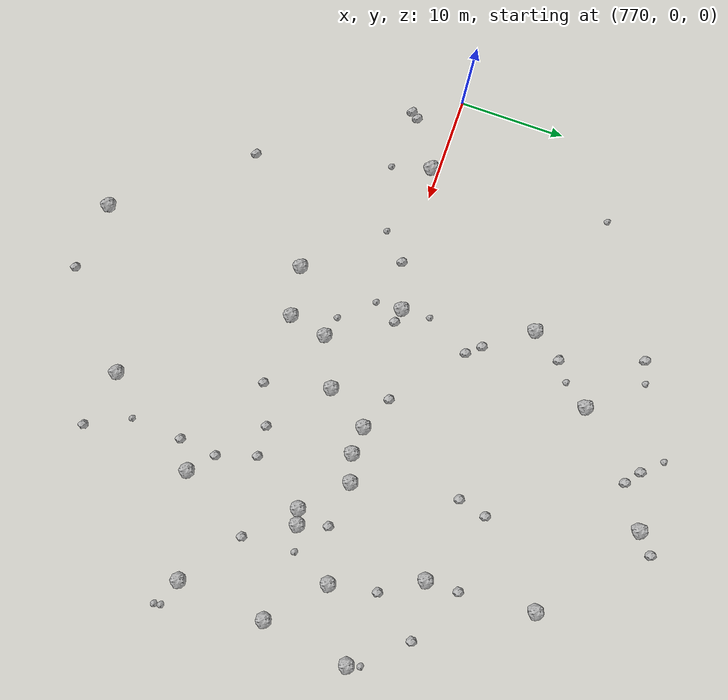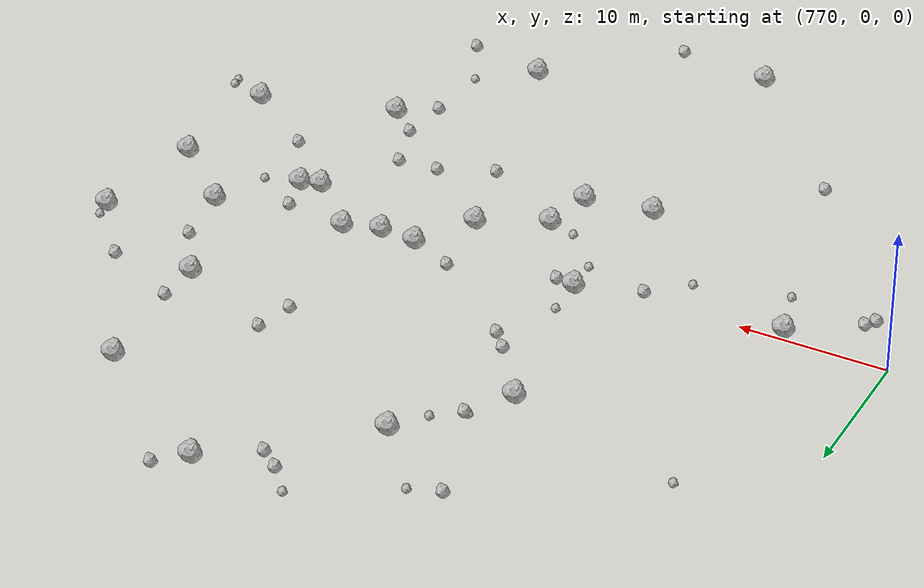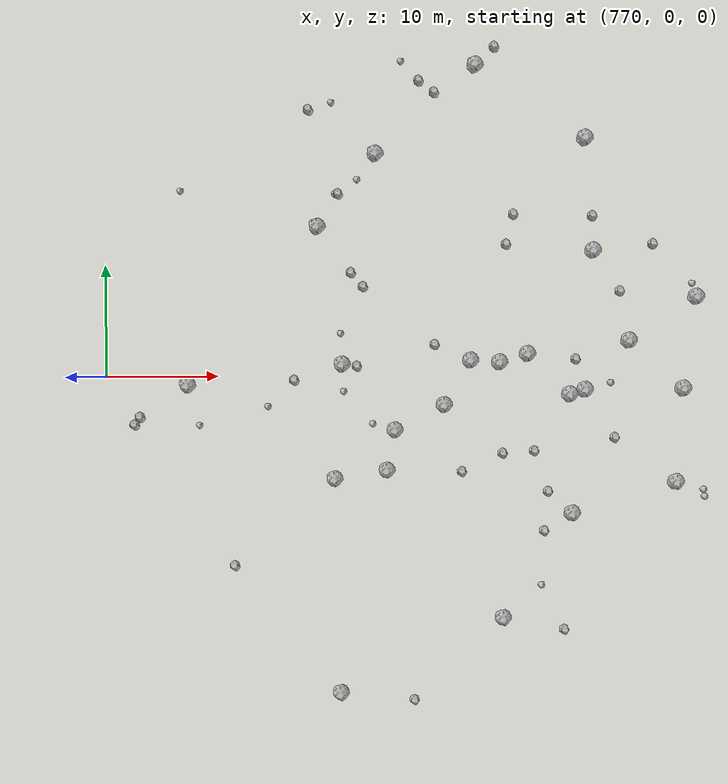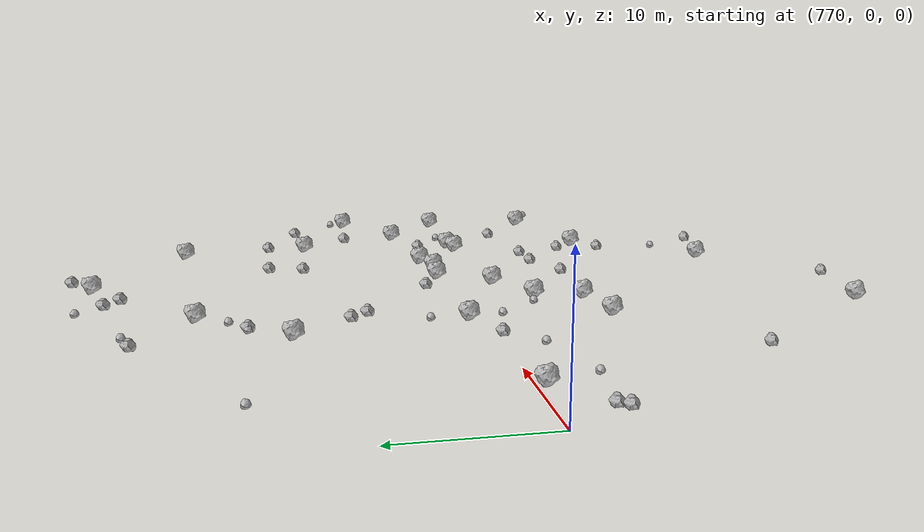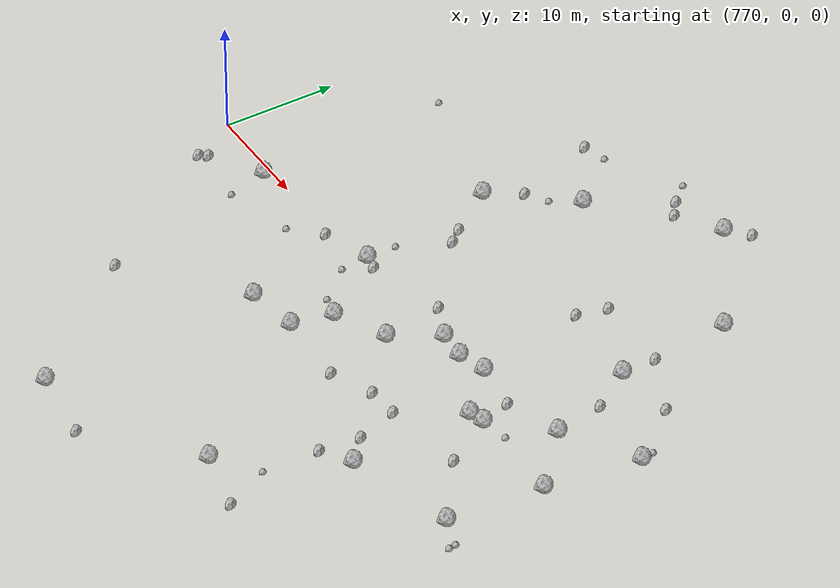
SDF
<sdf version="1.6">
 <world name="default">
  <include><uri>model://sun</uri></include>
  <model name="rock1_20_4">
   <include><uri>model://rock1</uri><pose>805.1095233157637 1.0972481352587522 0.5 0 0 0</pose></include>
  </model>
  <model name="rock1_20_5">
   <include><uri>model://rock1</uri><pose>813.5015424211481 10.96923065824437 0.5 0 0 0</pose></include>
  </model>
  <model name="rock1_20_6">
   <include><uri>model://rock1</uri><pose>811.3255701089669 -1.7990874556124794 0.5 0 0 0</pose></include>
  </model>
  <model name="rock1_20_7">
   <include><uri>model://rock1</uri><pose>803.1357126515254 27.54725128038593 0.5 0 0 0</pose></include>
  </model>
  <model name="rock1_20_8">
   <include><uri>model://rock1</uri><pose>777.3590316932668 -0.7628630708785877 0.5 0 0 0</pose></include>
  </model>
  <model name="rock1_20_9">
   <include><uri>model://rock1</uri><pose>816.6376005155479 2.9462995390999467 0.5 0 0 0</pose></include>
  </model>
  <model name="rock1_20_10">
   <include><uri>model://rock1</uri><pose>802.5258347557518 1.2836252958285215 0.5 0 0 0</pose></include>
  </model>
  <model name="rock1_20_11">
   <include><uri>model://rock1</uri><pose>788.9733243178239 13.266845949054591 0.5 0 0 0</pose></include>
  </model>
  <model name="rock1_20_12">
   <include><uri>model://rock1</uri><pose>812.8633435623804 20.971746956789133 0.5 0 0 0</pose></include>
  </model>
  <model name="rock1_20_13">
   <include><uri>model://rock1</uri><pose>790.7791208299722 -28.15668591031056 0.5 0 0 0</pose></include>
  </model>
  <model name="rock1_20_14">
   <include><uri>model://rock1</uri><pose>822.6342850492138 6.789123471405084 0.5 0 0 0</pose></include>
  </model>
  <model name="rock1_20_15">
   <include><uri>model://rock1</uri><pose>807.5970488923443 1.8273350604765142 0.5 0 0 0</pose></include>
  </model>
  <model name="rock1_20_16">
   <include><uri>model://rock1</uri><pose>800.1550796985432 -2.661050810127019 0.5 0 0 0</pose></include>
  </model>
  <model name="rock1_20_17">
   <include><uri>model://rock1</uri><pose>821.4205366345307 -1.3654724778189582 0.5 0 0 0</pose></include>
  </model>
  <model name="rock1_20_18">
   <include><uri>model://rock1</uri><pose>812.6840761529668 -1.3963364964843095 0.5 0 0 0</pose></include>
  </model>
  <model name="rock1_20_19">
   <include><uri>model://rock1</uri><pose>790.3755065588555 -9.17795952539407 0.5 0 0 0</pose></include>
  </model>
  <model name="rock1_20_20">
   <include><uri>model://rock1</uri><pose>820.7013437193632 -9.655771964923929 0.5 0 0 0</pose></include>
  </model>
  <model name="rock1_20_21">
   <include><uri>model://rock1</uri><pose>795.0111404502558 -8.432085259201969 0.5 0 0 0</pose></include>
  </model>
  <model name="rock1_20_22">
   <include><uri>model://rock1</uri><pose>791.1051855339831 1.009277747015929 0.5 0 0 0</pose></include>
  </model>
  <model name="rock1_20_23">
   <include><uri>model://rock1</uri><pose>795.7549958429252 -4.870167429319146 0.5 0 0 0</pose></include>
  </model>
  <model name="rock1_20_24">
   <include><uri>model://rock1</uri><pose>794.1790840919953 19.714922228803722 0.5 0 0 0</pose></include>
  </model>
  <model name="rock1_20_25">
   <include><uri>model://rock1</uri><pose>805.2370111811092 -21.616695837353966 0.5 0 0 0</pose></include>
  </model>
  <model name="rock1_20_26">
   <include><uri>model://rock1</uri><pose>811.4472766853028 -12.37636063245403 0.5 0 0 0</pose></include>
  </model>
  <model name="rock2_20_0">
   <include><uri>model://rock2</uri><pose>813.4738119579882 14.053693687179248 0.3 0 0 0</pose></include>
  </model>
  <model name="rock2_20_1">
   <include><uri>model://rock2</uri><pose>781.3887498369054 -16.875562306005286 0.3 0 0 0</pose></include>
  </model>
  <model name="rock2_20_2">
   <include><uri>model://rock2</uri><pose>801.6774577381682 -8.644548314402723 0.3 0 0 0</pose></include>
  </model>
  <model name="rock2_20_3">
   <include><uri>model://rock2</uri><pose>806.4266190567711 14.24315047711054 0.3 0 0 0</pose></include>
  </model>
  <model name="rock2_20_4">
   <include><uri>model://rock2</uri><pose>811.8871777515623 1.2981681031117347 0.3 0 0 0</pose></include>
  </model>
  <model name="rock2_20_5">
   <include><uri>model://rock2</uri><pose>799.3371979099774 2.686469914281787 0.3 0 0 0</pose></include>
  </model>
  <model name="rock2_20_6">
   <include><uri>model://rock2</uri><pose>772.5459362386399 -4.2582476686148425 0.3 0 0 0</pose></include>
  </model>
  <model name="rock2_20_7">
   <include><uri>model://rock2</uri><pose>805.324202802906 -7.043379418376652 0.3 0 0 0</pose></include>
  </model>
  <model name="rock2_20_8">
   <include><uri>model://rock2</uri><pose>792.9866296523891 7.902961505014552 0.3 0 0 0</pose></include>
  </model>
  <model name="rock2_20_9">
   <include><uri>model://rock2</uri><pose>818.8434814512112 11.509626314109909 0.3 0 0 0</pose></include>
  </model>
  <model name="rock2_20_10">
   <include><uri>model://rock2</uri><pose>815.8711120351734 7.329230569194166 0.3 0 0 0</pose></include>
  </model>
  <model name="rock2_20_11">
   <include><uri>model://rock2</uri><pose>791.9083398413785 9.155026509361079 0.3 0 0 0</pose></include>
  </model>
  <model name="rock2_20_12">
   <include><uri>model://rock2</uri><pose>788.213555085357 23.70217710468625 0.3 0 0 0</pose></include>
  </model>
  <model name="rock2_20_13">
   <include><uri>model://rock2</uri><pose>804.8421058070668 29.19108666605706 0.3 0 0 0</pose></include>
  </model>
  <model name="rock2_20_14">
   <include><uri>model://rock2</uri><pose>790.8090327926075 16.188582458970522 0.3 0 0 0</pose></include>
  </model>
  <model name="rock2_20_15">
   <include><uri>model://rock2</uri><pose>810.672038183474 -22.7792885855731 0.3 0 0 0</pose></include>
  </model>
  <model name="rock2_20_16">
   <include><uri>model://rock2</uri><pose>805.7680498863095 11.576273927651961 0.3 0 0 0</pose></include>
  </model>
  <model name="rock2_20_17">
   <include><uri>model://rock2</uri><pose>808.1345290172333 -6.852766006793139 0.3 0 0 0</pose></include>
  </model>
  <model name="rock2_20_18">
   <include><uri>model://rock2</uri><pose>815.3071243502928 -5.715330750134612 0.3 0 0 0</pose></include>
  </model>
  <model name="rock2_20_19">
   <include><uri>model://rock2</uri><pose>809.3297694679221 -10.47729434484252 0.3 0 0 0</pose></include>
  </model>
  <model name="rock2_20_20">
   <include><uri>model://rock2</uri><pose>808.9665752335527 -13.985138072421567 0.3 0 0 0</pose></include>
  </model>
  <model name="rock2_20_21">
   <include><uri>model://rock2</uri><pose>797.2955041506166 -28.93267911218679 0.3 0 0 0</pose></include>
  </model>
  <model name="rock2_20_22">
   <include><uri>model://rock2</uri><pose>773.0333823701233 -3.578124707057345 0.3 0 0 0</pose></include>
  </model>
  <model name="rock2_20_23">
   <include><uri>model://rock2</uri><pose>799.4525657968237 25.17228280830914 0.3 0 0 0</pose></include>
  </model>
  <model name="rock2_20_24">
   <include><uri>model://rock2</uri><pose>798.0880376642257 26.22707242744862 0.3 0 0 0</pose></include>
  </model>
  <model name="rock2_20_25">
   <include><uri>model://rock2</uri><pose>792.3868768830898 0.813557561968473 0.3 0 0 0</pose></include>
  </model>
  <model name="rock2_20_26">
   <include><uri>model://rock2</uri><pose>786.7905098527359 -0.38782128839706687 0.3 0 0 0</pose></include>
  </model>
  <model name="rock3_20_0">
   <include><uri>model://rock3</uri><pose>793.7382223718646 -4.353186506049784 0.2 0 0 0</pose></include>
  </model>
  <model name="rock3_20_1">
   <include><uri>model://rock3</uri><pose>814.9999709585006 -0.8557886437255782 0.2 0 0 0</pose></include>
  </model>
  <model name="rock3_20_2">
   <include><uri>model://rock3</uri><pose>776.7341297458842 16.530208592313826 0.2 0 0 0</pose></include>
  </model>
  <model name="rock3_20_3">
   <include><uri>model://rock3</uri><pose>784.4057272615286 -2.73822797131216 0.2 0 0 0</pose></include>
  </model>
  <model name="rock3_20_4">
   <include><uri>model://rock3</uri><pose>823.292318135088 -11.061792683462738 0.2 0 0 0</pose></include>
  </model>
  <model name="rock3_20_5">
   <include><uri>model://rock3</uri><pose>790.5150376840344 16.161243055606086 0.2 0 0 0</pose></include>
  </model>
  <model name="rock3_20_6">
   <include><uri>model://rock3</uri><pose>790.9324475160427 3.7204407779128204 0.2 0 0 0</pose></include>
  </model>
  <model name="rock3_20_7">
   <include><uri>model://rock3</uri><pose>790.2409580263652 24.33246704980465 0.2 0 0 0</pose></include>
  </model>
  <model name="rock3_20_8">
   <include><uri>model://rock3</uri><pose>808.6711372531349 -18.849571835434055 0.2 0 0 0</pose></include>
  </model>
  <model name="rock3_20_9">
   <include><uri>model://rock3</uri><pose>791.1689834076761 -1.4490578436154102 0.2 0 0 0</pose></include>
  </model>
  <model name="rock3_20_10">
   <include><uri>model://rock3</uri><pose>778.3001264589044 -4.384495952090539 0.2 0 0 0</pose></include>
  </model>
  <model name="rock3_20_11">
   <include><uri>model://rock3</uri><pose>823.1983724803226 -10.445099812684425 0.2 0 0 0</pose></include>
  </model>
  <model name="rock3_20_12">
   <include><uri>model://rock3</uri><pose>796.4897615445929 27.960435137702582 0.2 0 0 0</pose></include>
  </model>
  <model name="rock3_20_13">
   <include><uri>model://rock3</uri><pose>792.4956077012939 17.43301995656664 0.2 0 0 0</pose></include>
  </model>
  <model name="rock3_20_14">
   <include><uri>model://rock3</uri><pose>822.3316306923828 7.953555224024953 0.2 0 0 0</pose></include>
  </model>
 </world>
</sdf>
